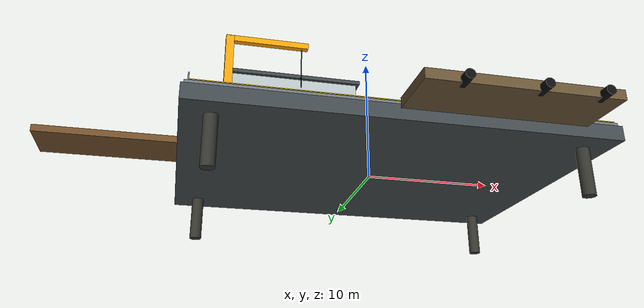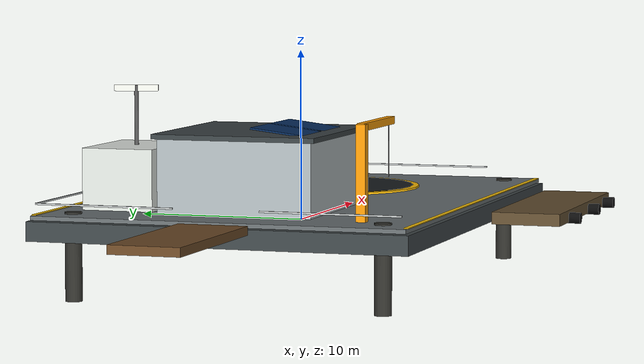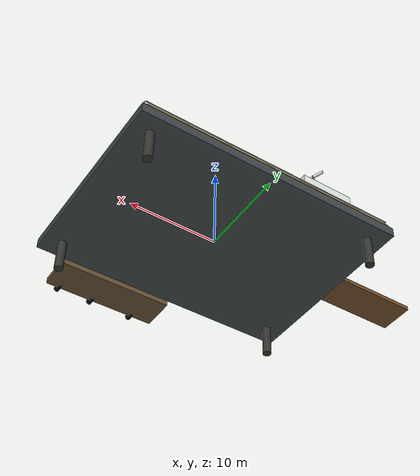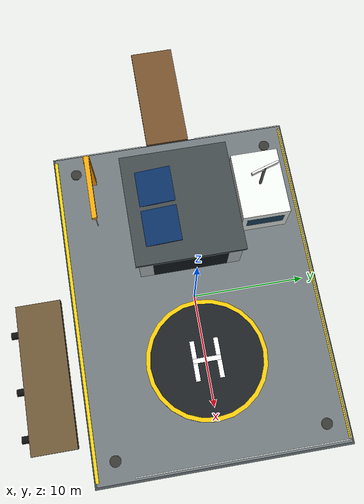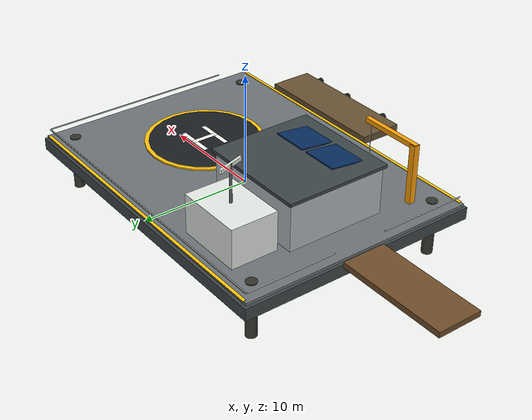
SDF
<?xml version="1.0"?>
<sdf version="1.10">
  <model name="shore_platform">
    <static>true</static>
    <link name="offshore_base">
      <!-- Reinforced concrete caisson and steel service deck. -->
      <collision name="caisson_collision">
        <pose>0 0 0.55 0 0 0</pose>
        <geometry><box><size>30 22 1.1</size></box></geometry>
      </collision>
      <visual name="caisson_visual">
        <pose>0 0 0.55 0 0 0</pose>
        <geometry><box><size>30 22 1.1</size></box></geometry>
        <material>
          <ambient>0.13 0.15 0.16 1</ambient>
          <diffuse>0.25 0.28 0.29 1</diffuse>
          <specular>0.08 0.08 0.08 1</specular>
        </material>
      </visual>
      <collision name="deck_collision">
        <pose>0 0 1.28 0 0 0</pose>
        <geometry><box><size>29.6 21.6 0.24</size></box></geometry>
      </collision>
      <visual name="deck_visual">
        <pose>0 0 1.28 0 0 0</pose>
        <geometry><box><size>29.6 21.6 0.24</size></box></geometry>
        <material>
          <ambient>0.25 0.28 0.29 1</ambient>
          <diffuse>0.42 0.45 0.46 1</diffuse>
          <specular>0.16 0.16 0.16 1</specular>
        </material>
      </visual>
      <visual name="hazard_edge_north">
        <pose>0 10.72 1.42 0 0 0</pose>
        <geometry><box><size>29 0.28 0.05</size></box></geometry>
        <material><ambient>0.95 0.68 0.02 1</ambient><diffuse>1 0.78 0.04 1</diffuse></material>
      </visual>
      <visual name="hazard_edge_south">
        <pose>0 -10.72 1.42 0 0 0</pose>
        <geometry><box><size>29 0.28 0.05</size></box></geometry>
        <material><ambient>0.95 0.68 0.02 1</ambient><diffuse>1 0.78 0.04 1</diffuse></material>
      </visual>

      <!-- Raised helipad, centered at local x=6 m. -->
      <collision name="helipad_collision">
        <pose>6 0 1.42 0 0 0</pose>
        <geometry><cylinder><radius>5.3</radius><length>0.2</length></cylinder></geometry>
      </collision>
      <visual name="helipad_outer_disc">
        <pose>6 0 1.42 0 0 0</pose>
        <geometry><cylinder><radius>5.3</radius><length>0.2</length></cylinder></geometry>
        <material>
          <ambient>0.92 0.64 0.015 1</ambient>
          <diffuse>1 0.75 0.03 1</diffuse>
        </material>
      </visual>
      <visual name="helipad_inner_disc">
        <pose>6 0 1.535 0 0 0</pose>
        <geometry><cylinder><radius>4.92</radius><length>0.025</length></cylinder></geometry>
        <material>
          <ambient>0.055 0.065 0.07 1</ambient>
          <diffuse>0.1 0.12 0.13 1</diffuse>
          <specular>0.2 0.2 0.2 1</specular>
        </material>
      </visual>
      <visual name="helipad_h_left">
        <pose>6 1.05 1.555 0 0 0</pose>
        <geometry><box><size>3.5 0.42 0.035</size></box></geometry>
        <material><ambient>0.95 0.95 0.9 1</ambient><diffuse>1 1 0.96 1</diffuse></material>
      </visual>
      <visual name="helipad_h_right">
        <pose>6 -1.05 1.555 0 0 0</pose>
        <geometry><box><size>3.5 0.42 0.035</size></box></geometry>
        <material><ambient>0.95 0.95 0.9 1</ambient><diffuse>1 1 0.96 1</diffuse></material>
      </visual>
      <visual name="helipad_h_crossbar">
        <pose>6 0 1.558 0 0 0</pose>
        <geometry><box><size>0.42 2.5 0.04</size></box></geometry>
        <material><ambient>0.95 0.95 0.9 1</ambient><diffuse>1 1 0.96 1</diffuse></material>
      </visual>

      <!-- UAV hangar with an open-door facade and rooftop solar array. -->
      <collision name="hangar_collision">
        <pose>-7 0 3.5 0 0 0</pose>
        <geometry><box><size>9.5 9 4.2</size></box></geometry>
      </collision>
      <visual name="hangar_body">
        <pose>-7 0 3.5 0 0 0</pose>
        <geometry><box><size>9.5 9 4.2</size></box></geometry>
        <material>
          <ambient>0.48 0.52 0.54 1</ambient>
          <diffuse>0.7 0.74 0.75 1</diffuse>
          <specular>0.3 0.3 0.3 1</specular>
        </material>
      </visual>
      <visual name="hangar_roof">
        <pose>-7 0 5.72 0 0 0</pose>
        <geometry><box><size>10 9.5 0.28</size></box></geometry>
        <material><ambient>0.15 0.17 0.18 1</ambient><diffuse>0.24 0.27 0.28 1</diffuse></material>
      </visual>
      <visual name="hangar_door">
        <pose>-2.235 0 3.2 0 0 0</pose>
        <geometry><box><size>0.06 6.6 3.35</size></box></geometry>
        <material>
          <ambient>0.035 0.045 0.05 1</ambient>
          <diffuse>0.07 0.09 0.1 1</diffuse>
          <specular>0.45 0.5 0.52 1</specular>
        </material>
      </visual>
      <visual name="hangar_sign">
        <pose>-2.19 0 5.15 0 0 0</pose>
        <geometry><box><size>0.04 4.6 0.42</size></box></geometry>
        <material><ambient>0.04 0.28 0.48 1</ambient><diffuse>0.06 0.5 0.82 1</diffuse><emissive>0.02 0.12 0.25 1</emissive></material>
      </visual>
      <visual name="solar_panel_a">
        <pose>-8.8 -2.2 5.98 0.12 0 0</pose>
        <geometry><box><size>3.2 3.4 0.1</size></box></geometry>
        <material><ambient>0.02 0.08 0.16 1</ambient><diffuse>0.03 0.18 0.38 1</diffuse><specular>0.8 0.85 0.9 1</specular></material>
      </visual>
      <visual name="solar_panel_b">
        <pose>-5.2 -2.2 5.98 0.12 0 0</pose>
        <geometry><box><size>3.2 3.4 0.1</size></box></geometry>
        <material><ambient>0.02 0.08 0.16 1</ambient><diffuse>0.03 0.18 0.38 1</diffuse><specular>0.8 0.85 0.9 1</specular></material>
      </visual>

      <!-- Elevated operations room and radar mast. -->
      <collision name="control_room_collision">
        <pose>-8 7.2 3.15 0 0 0</pose>
        <geometry><box><size>6 4.2 3.5</size></box></geometry>
      </collision>
      <visual name="control_room_body">
        <pose>-8 7.2 3.15 0 0 0</pose>
        <geometry><box><size>6 4.2 3.5</size></box></geometry>
        <material><ambient>0.76 0.78 0.76 1</ambient><diffuse>0.9 0.92 0.9 1</diffuse></material>
      </visual>
      <visual name="control_room_window">
        <pose>-4.97 7.2 3.45 0 0 0</pose>
        <geometry><box><size>0.05 3.3 1.25</size></box></geometry>
        <material><ambient>0.015 0.08 0.13 0.85</ambient><diffuse>0.025 0.2 0.34 0.85</diffuse><specular>0.9 0.95 1 1</specular></material>
      </visual>
      <visual name="radar_mast">
        <pose>-8 7.2 6.6 0 0 0</pose>
        <geometry><cylinder><radius>0.12</radius><length>3.4</length></cylinder></geometry>
        <material><ambient>0.2 0.2 0.2 1</ambient><diffuse>0.35 0.35 0.35 1</diffuse></material>
      </visual>
      <visual name="radar_bar">
        <pose>-8 7.2 8.15 0 0 0.3</pose>
        <geometry><box><size>0.18 2.5 0.35</size></box></geometry>
        <material><ambient>0.82 0.84 0.82 1</ambient><diffuse>0.96 0.97 0.94 1</diffuse></material>
      </visual>

      <!-- Service crane and USV-side floating dock. -->
      <visual name="crane_tower">
        <pose>-12 -7.5 4 0 0 0</pose>
        <geometry><box><size>0.55 0.55 5.4</size></box></geometry>
        <material><ambient>0.92 0.52 0.015 1</ambient><diffuse>1 0.63 0.03 1</diffuse></material>
      </visual>
      <visual name="crane_boom">
        <pose>-9.4 -7.5 6.55 0 0 0</pose>
        <geometry><box><size>5.7 0.42 0.42</size></box></geometry>
        <material><ambient>0.92 0.52 0.015 1</ambient><diffuse>1 0.63 0.03 1</diffuse></material>
      </visual>
      <visual name="crane_cable">
        <pose>-7 -7.5 4.9 0 0 0</pose>
        <geometry><cylinder><radius>0.035</radius><length>3</length></cylinder></geometry>
        <material><ambient>0.04 0.04 0.04 1</ambient><diffuse>0.08 0.08 0.08 1</diffuse></material>
      </visual>
      <collision name="service_dock_collision">
        <pose>5 -14 0.65 0 0 0</pose>
        <geometry><box><size>13 4 0.7</size></box></geometry>
      </collision>
      <visual name="service_dock_visual">
        <pose>5 -14 0.65 0 0 0</pose>
        <geometry><box><size>13 4 0.7</size></box></geometry>
        <material><ambient>0.22 0.18 0.12 1</ambient><diffuse>0.4 0.32 0.2 1</diffuse></material>
      </visual>
      <visual name="dock_fender_a">
        <pose>1 -16.05 0.55 1.5708 0 0</pose>
        <geometry><cylinder><radius>0.32</radius><length>1.2</length></cylinder></geometry>
        <material><ambient>0.025 0.025 0.025 1</ambient><diffuse>0.05 0.05 0.05 1</diffuse></material>
      </visual>
      <visual name="dock_fender_b">
        <pose>6 -16.05 0.55 1.5708 0 0</pose>
        <geometry><cylinder><radius>0.32</radius><length>1.2</length></cylinder></geometry>
        <material><ambient>0.025 0.025 0.025 1</ambient><diffuse>0.05 0.05 0.05 1</diffuse></material>
      </visual>
      <visual name="dock_fender_c">
        <pose>10 -16.05 0.55 1.5708 0 0</pose>
        <geometry><cylinder><radius>0.32</radius><length>1.2</length></cylinder></geometry>
        <material><ambient>0.025 0.025 0.025 1</ambient><diffuse>0.05 0.05 0.05 1</diffuse></material>
      </visual>

      <!-- Shore connection and structural piles. -->
      <collision name="access_bridge_collision">
        <pose>-20 0 1.05 0 0 0</pose>
        <geometry><box><size>10 4 0.5</size></box></geometry>
      </collision>
      <visual name="access_bridge_visual">
        <pose>-20 0 1.05 0 0 0</pose>
        <geometry><box><size>10 4 0.5</size></box></geometry>
        <material><ambient>0.24 0.17 0.1 1</ambient><diffuse>0.44 0.3 0.16 1</diffuse></material>
      </visual>
      <visual name="pile_nw">
        <pose>-13 9 -1 0 0 0</pose>
        <geometry><cylinder><radius>0.48</radius><length>5</length></cylinder></geometry>
        <material><ambient>0.12 0.12 0.11 1</ambient><diffuse>0.2 0.2 0.18 1</diffuse></material>
      </visual>
      <visual name="pile_ne">
        <pose>13 9 -1 0 0 0</pose>
        <geometry><cylinder><radius>0.48</radius><length>5</length></cylinder></geometry>
        <material><ambient>0.12 0.12 0.11 1</ambient><diffuse>0.2 0.2 0.18 1</diffuse></material>
      </visual>
      <visual name="pile_sw">
        <pose>-13 -9 -1 0 0 0</pose>
        <geometry><cylinder><radius>0.48</radius><length>5</length></cylinder></geometry>
        <material><ambient>0.12 0.12 0.11 1</ambient><diffuse>0.2 0.2 0.18 1</diffuse></material>
      </visual>
      <visual name="pile_se">
        <pose>13 -9 -1 0 0 0</pose>
        <geometry><cylinder><radius>0.48</radius><length>5</length></cylinder></geometry>
        <material><ambient>0.12 0.12 0.11 1</ambient><diffuse>0.2 0.2 0.18 1</diffuse></material>
      </visual>

      <!-- Perimeter rails leave the access bridge and service dock openings clear. -->
      <visual name="rail_north">
        <pose>0 10.6 2.05 0 0 0</pose>
        <geometry><box><size>29 0.09 0.09</size></box></geometry>
        <material><ambient>0.58 0.6 0.6 1</ambient><diffuse>0.78 0.8 0.8 1</diffuse><specular>0.5 0.5 0.5 1</specular></material>
      </visual>
      <visual name="rail_east">
        <pose>14.55 1.5 2.05 0 0 0</pose>
        <geometry><box><size>0.09 18 0.09</size></box></geometry>
        <material><ambient>0.58 0.6 0.6 1</ambient><diffuse>0.78 0.8 0.8 1</diffuse></material>
      </visual>
      <visual name="rail_west_north">
        <pose>-14.55 6.5 2.05 0 0 0</pose>
        <geometry><box><size>0.09 8 0.09</size></box></geometry>
        <material><ambient>0.58 0.6 0.6 1</ambient><diffuse>0.78 0.8 0.8 1</diffuse></material>
      </visual>
      <visual name="rail_west_south">
        <pose>-14.55 -6.5 2.05 0 0 0</pose>
        <geometry><box><size>0.09 8 0.09</size></box></geometry>
        <material><ambient>0.58 0.6 0.6 1</ambient><diffuse>0.78 0.8 0.8 1</diffuse></material>
      </visual>

      <light name="helipad_beacon_n" type="point">
        <pose>6 5.4 1.75 0 0 0</pose><cast_shadows>false</cast_shadows><intensity>1.2</intensity>
        <diffuse>0.1 0.65 1 1</diffuse><specular>0.2 0.8 1 1</specular>
        <attenuation><range>22</range><constant>0.8</constant><linear>0.05</linear><quadratic>0.002</quadratic></attenuation>
      </light>
      <light name="helipad_beacon_s" type="point">
        <pose>6 -5.4 1.75 0 0 0</pose><cast_shadows>false</cast_shadows><intensity>1.2</intensity>
        <diffuse>0.1 0.65 1 1</diffuse><specular>0.2 0.8 1 1</specular>
        <attenuation><range>22</range><constant>0.8</constant><linear>0.05</linear><quadratic>0.002</quadratic></attenuation>
      </light>
      <light name="operations_beacon" type="point">
        <pose>-8 7.2 8.45 0 0 0</pose><cast_shadows>false</cast_shadows><intensity>2</intensity>
        <diffuse>1 0.12 0.04 1</diffuse><specular>1 0.25 0.1 1</specular>
        <attenuation><range>35</range><constant>0.7</constant><linear>0.04</linear><quadratic>0.002</quadratic></attenuation>
      </light>
    </link>
  </model>
</sdf>
